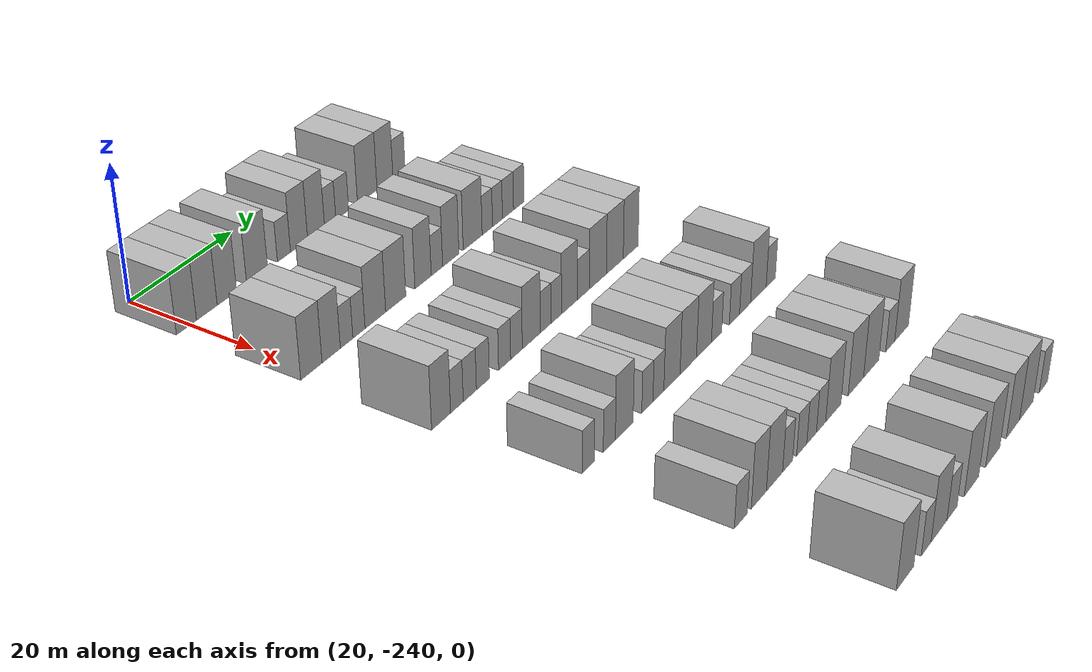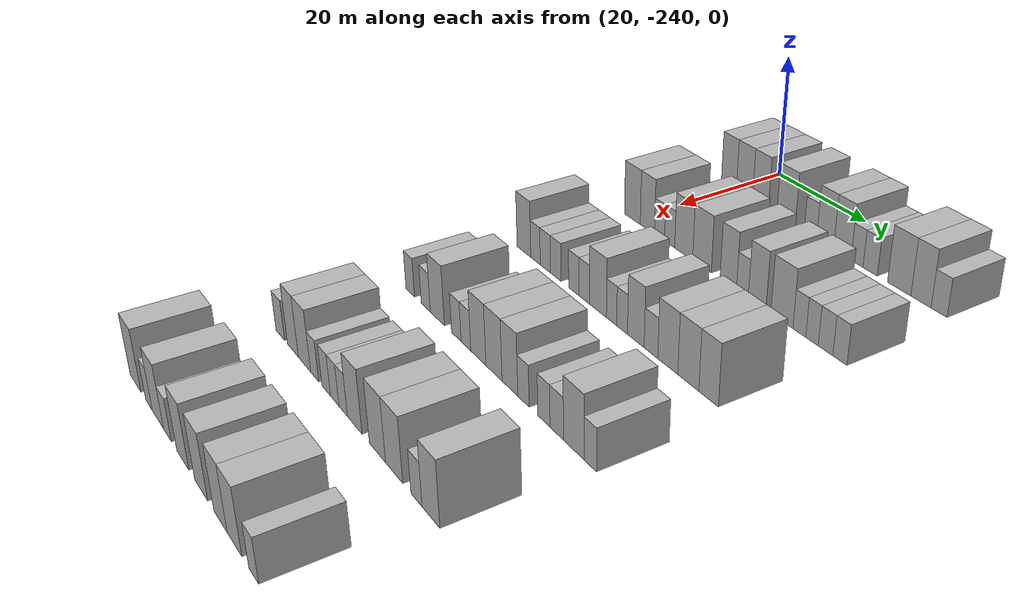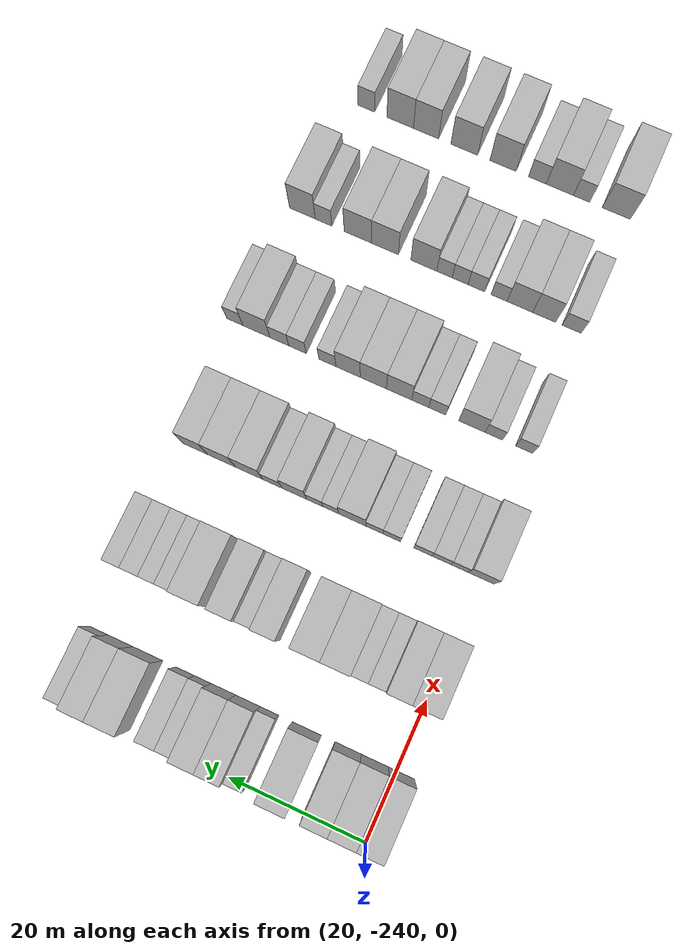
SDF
<sdf version="1.6">
 <world name="default">
  <model name="building_25">
   <static>1</static>
   <pose>25.0000 -240.6920 0 0.000000 0.000000 0.000000</pose>
   <link name="link">
    <pose>0 0 4.50 0 0 0</pose>
    <collision name="collision"><geometry><box><size>10.0000 3.7934 9.0000</size></box></geometry></collision>
    <visual name="visual">
     <cast_shadows>0</cast_shadows>
     <geometry><box><size>10.0000 3.7934 9.0000</size></box></geometry>
     <material>
      <script>
       <uri>model://HANNAS_wall/materials/scripts</uri>
       <uri>model://HANNAS_wall/materials/textures</uri>
       <name>vrc/HANNAS_wall</name>
      </script>
     </material>
    </visual>
   </link>
  </model>
  <model name="building_26">
   <static>1</static>
   <pose>25.0000 -236.7991 0 0.000000 0.000000 0.000000</pose>
   <link name="link">
    <pose>0 0 4.50 0 0 0</pose>
    <collision name="collision"><geometry><box><size>10.0000 3.9925 9.0000</size></box></geometry></collision>
    <visual name="visual">
     <cast_shadows>0</cast_shadows>
     <geometry><box><size>10.0000 3.9925 9.0000</size></box></geometry>
     <material>
      <script>
       <uri>model://HANNAS_wall/materials/scripts</uri>
       <uri>model://HANNAS_wall/materials/textures</uri>
       <name>vrc/HANNAS_wall</name>
      </script>
     </material>
    </visual>
   </link>
  </model>
  <model name="building_27">
   <static>1</static>
   <pose>25.0000 -232.8922 0 0.000000 0.000000 0.000000</pose>
   <link name="link">
    <pose>0 0 4.50 0 0 0</pose>
    <collision name="collision"><geometry><box><size>10.0000 3.8211 9.0000</size></box></geometry></collision>
    <visual name="visual">
     <cast_shadows>0</cast_shadows>
     <geometry><box><size>10.0000 3.8211 9.0000</size></box></geometry>
     <material>
      <script>
       <uri>model://HANNAS_wall/materials/scripts</uri>
       <uri>model://HANNAS_wall/materials/textures</uri>
       <name>vrc/HANNAS_wall</name>
      </script>
     </material>
    </visual>
   </link>
  </model>
  <model name="building_28">
   <static>1</static>
   <pose>25.0000 -226.8412 0 0.000000 0.000000 0.000000</pose>
   <link name="link">
    <pose>0 0 4.50 0 0 0</pose>
    <collision name="collision"><geometry><box><size>10.0000 4.2809 9.0000</size></box></geometry></collision>
    <visual name="visual">
     <cast_shadows>0</cast_shadows>
     <geometry><box><size>10.0000 4.2809 9.0000</size></box></geometry>
     <material>
      <script>
       <uri>model://HANNAS_wall/materials/scripts</uri>
       <uri>model://HANNAS_wall/materials/textures</uri>
       <name>vrc/HANNAS_wall</name>
      </script>
     </material>
    </visual>
   </link>
  </model>
  <model name="building_29">
   <static>1</static>
   <pose>25.0000 -221.3224 0 0.000000 0.000000 0.000000</pose>
   <link name="link">
    <pose>0 0 3.00 0 0 0</pose>
    <collision name="collision"><geometry><box><size>10.0000 2.7567 6.0000</size></box></geometry></collision>
    <visual name="visual">
     <cast_shadows>0</cast_shadows>
     <geometry><box><size>10.0000 2.7567 6.0000</size></box></geometry>
     <material>
      <script>
       <uri>model://HANNAS_wall/materials/scripts</uri>
       <uri>model://HANNAS_wall/materials/textures</uri>
       <name>vrc/HANNAS_wall</name>
      </script>
     </material>
    </visual>
   </link>
  </model>
  <model name="building_30">
   <static>1</static>
   <pose>25.0000 -218.1187 0 0.000000 0.000000 0.000000</pose>
   <link name="link">
    <pose>0 0 4.50 0 0 0</pose>
    <collision name="collision"><geometry><box><size>10.0000 3.6509 9.0000</size></box></geometry></collision>
    <visual name="visual">
     <cast_shadows>0</cast_shadows>
     <geometry><box><size>10.0000 3.6509 9.0000</size></box></geometry>
     <material>
      <script>
       <uri>model://HANNAS_wall/materials/scripts</uri>
       <uri>model://HANNAS_wall/materials/textures</uri>
       <name>vrc/HANNAS_wall</name>
      </script>
     </material>
    </visual>
   </link>
  </model>
  <model name="building_31">
   <static>1</static>
   <pose>25.0000 -214.4540 0 0.000000 0.000000 0.000000</pose>
   <link name="link">
    <pose>0 0 4.50 0 0 0</pose>
    <collision name="collision"><geometry><box><size>10.0000 3.6784 9.0000</size></box></geometry></collision>
    <visual name="visual">
     <cast_shadows>0</cast_shadows>
     <geometry><box><size>10.0000 3.6784 9.0000</size></box></geometry>
     <material>
      <script>
       <uri>model://HANNAS_wall/materials/scripts</uri>
       <uri>model://HANNAS_wall/materials/textures</uri>
       <name>vrc/HANNAS_wall</name>
      </script>
     </material>
    </visual>
   </link>
  </model>
  <model name="building_32">
   <static>1</static>
   <pose>25.0000 -211.3773 0 0.000000 0.000000 0.000000</pose>
   <link name="link">
    <pose>0 0 3.00 0 0 0</pose>
    <collision name="collision"><geometry><box><size>10.0000 2.4749 6.0000</size></box></geometry></collision>
    <visual name="visual">
     <cast_shadows>0</cast_shadows>
     <geometry><box><size>10.0000 2.4749 6.0000</size></box></geometry>
     <material>
      <script>
       <uri>model://HANNAS_wall/materials/scripts</uri>
       <uri>model://HANNAS_wall/materials/textures</uri>
       <name>vrc/HANNAS_wall</name>
      </script>
     </material>
    </visual>
   </link>
  </model>
  <model name="building_33">
   <static>1</static>
   <pose>25.0000 -208.6981 0 0.000000 0.000000 0.000000</pose>
   <link name="link">
    <pose>0 0 3.00 0 0 0</pose>
    <collision name="collision"><geometry><box><size>10.0000 2.8835 6.0000</size></box></geometry></collision>
    <visual name="visual">
     <cast_shadows>0</cast_shadows>
     <geometry><box><size>10.0000 2.8835 6.0000</size></box></geometry>
     <material>
      <script>
       <uri>model://HANNAS_wall/materials/scripts</uri>
       <uri>model://HANNAS_wall/materials/textures</uri>
       <name>vrc/HANNAS_wall</name>
      </script>
     </material>
    </visual>
   </link>
  </model>
  <model name="building_34">
   <static>1</static>
   <pose>25.0000 -203.0169 0 0.000000 0.000000 0.000000</pose>
   <link name="link">
    <pose>0 0 4.50 0 0 0</pose>
    <collision name="collision"><geometry><box><size>10.0000 4.4790 9.0000</size></box></geometry></collision>
    <visual name="visual">
     <cast_shadows>0</cast_shadows>
     <geometry><box><size>10.0000 4.4790 9.0000</size></box></geometry>
     <material>
      <script>
       <uri>model://HANNAS_wall/materials/scripts</uri>
       <uri>model://HANNAS_wall/materials/textures</uri>
       <name>vrc/HANNAS_wall</name>
      </script>
     </material>
    </visual>
   </link>
  </model>
  <model name="building_35">
   <static>1</static>
   <pose>25.0000 -198.8989 0 0.000000 0.000000 0.000000</pose>
   <link name="link">
    <pose>0 0 4.50 0 0 0</pose>
    <collision name="collision"><geometry><box><size>10.0000 3.7570 9.0000</size></box></geometry></collision>
    <visual name="visual">
     <cast_shadows>0</cast_shadows>
     <geometry><box><size>10.0000 3.7570 9.0000</size></box></geometry>
     <material>
      <script>
       <uri>model://HANNAS_wall/materials/scripts</uri>
       <uri>model://HANNAS_wall/materials/textures</uri>
       <name>vrc/HANNAS_wall</name>
      </script>
     </material>
    </visual>
   </link>
  </model>
  <model name="building_36">
   <static>1</static>
   <pose>25.0000 -195.5703 0 0.000000 0.000000 0.000000</pose>
   <link name="link">
    <pose>0 0 3.00 0 0 0</pose>
    <collision name="collision"><geometry><box><size>10.0000 2.9002 6.0000</size></box></geometry></collision>
    <visual name="visual">
     <cast_shadows>0</cast_shadows>
     <geometry><box><size>10.0000 2.9002 6.0000</size></box></geometry>
     <material>
      <script>
       <uri>model://HANNAS_wall/materials/scripts</uri>
       <uri>model://HANNAS_wall/materials/textures</uri>
       <name>vrc/HANNAS_wall</name>
      </script>
     </material>
    </visual>
   </link>
  </model>
  <model name="building_202">
   <static>1</static>
   <pose>44.0000 -240.0923 0 0.000000 0.000000 0.000000</pose>
   <link name="link">
    <pose>0 0 4.50 0 0 0</pose>
    <collision name="collision"><geometry><box><size>10.0000 4.1761 9.0000</size></box></geometry></collision>
    <visual name="visual">
     <cast_shadows>0</cast_shadows>
     <geometry><box><size>10.0000 4.1761 9.0000</size></box></geometry>
     <material>
      <script>
       <uri>model://HANNAS_wall/materials/scripts</uri>
       <uri>model://HANNAS_wall/materials/textures</uri>
       <name>vrc/HANNAS_wall</name>
      </script>
     </material>
    </visual>
   </link>
  </model>
  <model name="building_203">
   <static>1</static>
   <pose>44.0000 -236.1769 0 0.000000 0.000000 0.000000</pose>
   <link name="link">
    <pose>0 0 4.50 0 0 0</pose>
    <collision name="collision"><geometry><box><size>10.0000 3.6547 9.0000</size></box></geometry></collision>
    <visual name="visual">
     <cast_shadows>0</cast_shadows>
     <geometry><box><size>10.0000 3.6547 9.0000</size></box></geometry>
     <material>
      <script>
       <uri>model://HANNAS_wall/materials/scripts</uri>
       <uri>model://HANNAS_wall/materials/textures</uri>
       <name>vrc/HANNAS_wall</name>
      </script>
     </material>
    </visual>
   </link>
  </model>
  <model name="building_204">
   <static>1</static>
   <pose>44.0000 -233.0744 0 0.000000 0.000000 0.000000</pose>
   <link name="link">
    <pose>0 0 3.00 0 0 0</pose>
    <collision name="collision"><geometry><box><size>10.0000 2.5502 6.0000</size></box></geometry></collision>
    <visual name="visual">
     <cast_shadows>0</cast_shadows>
     <geometry><box><size>10.0000 2.5502 6.0000</size></box></geometry>
     <material>
      <script>
       <uri>model://HANNAS_wall/materials/scripts</uri>
       <uri>model://HANNAS_wall/materials/textures</uri>
       <name>vrc/HANNAS_wall</name>
      </script>
     </material>
    </visual>
   </link>
  </model>
  <model name="building_205">
   <static>1</static>
   <pose>44.0000 -230.5454 0 0.000000 0.000000 0.000000</pose>
   <link name="link">
    <pose>0 0 3.00 0 0 0</pose>
    <collision name="collision"><geometry><box><size>10.0000 2.5078 6.0000</size></box></geometry></collision>
    <visual name="visual">
     <cast_shadows>0</cast_shadows>
     <geometry><box><size>10.0000 2.5078 6.0000</size></box></geometry>
     <material>
      <script>
       <uri>model://HANNAS_wall/materials/scripts</uri>
       <uri>model://HANNAS_wall/materials/textures</uri>
       <name>vrc/HANNAS_wall</name>
      </script>
     </material>
    </visual>
   </link>
  </model>
  <model name="building_206">
   <static>1</static>
   <pose>44.0000 -227.1193 0 0.000000 0.000000 0.000000</pose>
   <link name="link">
    <pose>0 0 4.50 0 0 0</pose>
    <collision name="collision"><geometry><box><size>10.0000 4.3445 9.0000</size></box></geometry></collision>
    <visual name="visual">
     <cast_shadows>0</cast_shadows>
     <geometry><box><size>10.0000 4.3445 9.0000</size></box></geometry>
     <material>
      <script>
       <uri>model://HANNAS_wall/materials/scripts</uri>
       <uri>model://HANNAS_wall/materials/textures</uri>
       <name>vrc/HANNAS_wall</name>
      </script>
     </material>
    </visual>
   </link>
  </model>
  <model name="building_207">
   <static>1</static>
   <pose>44.0000 -222.7754 0 0.000000 0.000000 0.000000</pose>
   <link name="link">
    <pose>0 0 4.50 0 0 0</pose>
    <collision name="collision"><geometry><box><size>10.0000 4.3433 9.0000</size></box></geometry></collision>
    <visual name="visual">
     <cast_shadows>0</cast_shadows>
     <geometry><box><size>10.0000 4.3433 9.0000</size></box></geometry>
     <material>
      <script>
       <uri>model://HANNAS_wall/materials/scripts</uri>
       <uri>model://HANNAS_wall/materials/textures</uri>
       <name>vrc/HANNAS_wall</name>
      </script>
     </material>
    </visual>
   </link>
  </model>
  <model name="building_208">
   <static>1</static>
   <pose>44.0000 -216.7900 0 0.000000 0.000000 0.000000</pose>
   <link name="link">
    <pose>0 0 4.50 0 0 0</pose>
    <collision name="collision"><geometry><box><size>10.0000 3.6277 9.0000</size></box></geometry></collision>
    <visual name="visual">
     <cast_shadows>0</cast_shadows>
     <geometry><box><size>10.0000 3.6277 9.0000</size></box></geometry>
     <material>
      <script>
       <uri>model://HANNAS_wall/materials/scripts</uri>
       <uri>model://HANNAS_wall/materials/textures</uri>
       <name>vrc/HANNAS_wall</name>
      </script>
     </material>
    </visual>
   </link>
  </model>
  <model name="building_209">
   <static>1</static>
   <pose>44.0000 -213.6819 0 0.000000 0.000000 0.000000</pose>
   <link name="link">
    <pose>0 0 3.00 0 0 0</pose>
    <collision name="collision"><geometry><box><size>10.0000 2.5885 6.0000</size></box></geometry></collision>
    <visual name="visual">
     <cast_shadows>0</cast_shadows>
     <geometry><box><size>10.0000 2.5885 6.0000</size></box></geometry>
     <material>
      <script>
       <uri>model://HANNAS_wall/materials/scripts</uri>
       <uri>model://HANNAS_wall/materials/textures</uri>
       <name>vrc/HANNAS_wall</name>
      </script>
     </material>
    </visual>
   </link>
  </model>
  <model name="building_210">
   <static>1</static>
   <pose>44.0000 -210.5185 0 0.000000 0.000000 0.000000</pose>
   <link name="link">
    <pose>0 0 4.50 0 0 0</pose>
    <collision name="collision"><geometry><box><size>10.0000 3.7384 9.0000</size></box></geometry></collision>
    <visual name="visual">
     <cast_shadows>0</cast_shadows>
     <geometry><box><size>10.0000 3.7384 9.0000</size></box></geometry>
     <material>
      <script>
       <uri>model://HANNAS_wall/materials/scripts</uri>
       <uri>model://HANNAS_wall/materials/textures</uri>
       <name>vrc/HANNAS_wall</name>
      </script>
     </material>
    </visual>
   </link>
  </model>
  <model name="building_211">
   <static>1</static>
   <pose>44.0000 -205.4026 0 0.000000 0.000000 0.000000</pose>
   <link name="link">
    <pose>0 0 4.50 0 0 0</pose>
    <collision name="collision"><geometry><box><size>10.0000 4.4933 9.0000</size></box></geometry></collision>
    <visual name="visual">
     <cast_shadows>0</cast_shadows>
     <geometry><box><size>10.0000 4.4933 9.0000</size></box></geometry>
     <material>
      <script>
       <uri>model://HANNAS_wall/materials/scripts</uri>
       <uri>model://HANNAS_wall/materials/textures</uri>
       <name>vrc/HANNAS_wall</name>
      </script>
     </material>
    </visual>
   </link>
  </model>
  <model name="building_212">
   <static>1</static>
   <pose>44.0000 -201.9008 0 0.000000 0.000000 0.000000</pose>
   <link name="link">
    <pose>0 0 3.00 0 0 0</pose>
    <collision name="collision"><geometry><box><size>10.0000 2.5104 6.0000</size></box></geometry></collision>
    <visual name="visual">
     <cast_shadows>0</cast_shadows>
     <geometry><box><size>10.0000 2.5104 6.0000</size></box></geometry>
     <material>
      <script>
       <uri>model://HANNAS_wall/materials/scripts</uri>
       <uri>model://HANNAS_wall/materials/textures</uri>
       <name>vrc/HANNAS_wall</name>
      </script>
     </material>
    </visual>
   </link>
  </model>
  <model name="building_213">
   <static>1</static>
   <pose>44.0000 -199.4427 0 0.000000 0.000000 0.000000</pose>
   <link name="link">
    <pose>0 0 3.00 0 0 0</pose>
    <collision name="collision"><geometry><box><size>10.0000 2.4058 6.0000</size></box></geometry></collision>
    <visual name="visual">
     <cast_shadows>0</cast_shadows>
     <geometry><box><size>10.0000 2.4058 6.0000</size></box></geometry>
     <material>
      <script>
       <uri>model://HANNAS_wall/materials/scripts</uri>
       <uri>model://HANNAS_wall/materials/textures</uri>
       <name>vrc/HANNAS_wall</name>
      </script>
     </material>
    </visual>
   </link>
  </model>
  <model name="building_214">
   <static>1</static>
   <pose>44.0000 -196.8656 0 0.000000 0.000000 0.000000</pose>
   <link name="link">
    <pose>0 0 3.00 0 0 0</pose>
    <collision name="collision"><geometry><box><size>10.0000 2.7484 6.0000</size></box></geometry></collision>
    <visual name="visual">
     <cast_shadows>0</cast_shadows>
     <geometry><box><size>10.0000 2.7484 6.0000</size></box></geometry>
     <material>
      <script>
       <uri>model://HANNAS_wall/materials/scripts</uri>
       <uri>model://HANNAS_wall/materials/textures</uri>
       <name>vrc/HANNAS_wall</name>
      </script>
     </material>
    </visual>
   </link>
  </model>
  <model name="building_215">
   <static>1</static>
   <pose>44.0000 -194.1816 0 0.000000 0.000000 0.000000</pose>
   <link name="link">
    <pose>0 0 3.00 0 0 0</pose>
    <collision name="collision"><geometry><box><size>10.0000 2.6196 6.0000</size></box></geometry></collision>
    <visual name="visual">
     <cast_shadows>0</cast_shadows>
     <geometry><box><size>10.0000 2.6196 6.0000</size></box></geometry>
     <material>
      <script>
       <uri>model://HANNAS_wall/materials/scripts</uri>
       <uri>model://HANNAS_wall/materials/textures</uri>
       <name>vrc/HANNAS_wall</name>
      </script>
     </material>
    </visual>
   </link>
  </model>
  <model name="building_370">
   <static>1</static>
   <pose>63.0000 -240.2266 0 0.000000 0.000000 0.000000</pose>
   <link name="link">
    <pose>0 0 4.50 0 0 0</pose>
    <collision name="collision"><geometry><box><size>10.0000 3.8650 9.0000</size></box></geometry></collision>
    <visual name="visual">
     <cast_shadows>0</cast_shadows>
     <geometry><box><size>10.0000 3.8650 9.0000</size></box></geometry>
     <material>
      <script>
       <uri>model://HANNAS_wall/materials/scripts</uri>
       <uri>model://HANNAS_wall/materials/textures</uri>
       <name>vrc/HANNAS_wall</name>
      </script>
     </material>
    </visual>
   </link>
  </model>
  <model name="building_371">
   <static>1</static>
   <pose>63.0000 -236.9826 0 0.000000 0.000000 0.000000</pose>
   <link name="link">
    <pose>0 0 3.00 0 0 0</pose>
    <collision name="collision"><geometry><box><size>10.0000 2.6230 6.0000</size></box></geometry></collision>
    <visual name="visual">
     <cast_shadows>0</cast_shadows>
     <geometry><box><size>10.0000 2.6230 6.0000</size></box></geometry>
     <material>
      <script>
       <uri>model://HANNAS_wall/materials/scripts</uri>
       <uri>model://HANNAS_wall/materials/textures</uri>
       <name>vrc/HANNAS_wall</name>
      </script>
     </material>
    </visual>
   </link>
  </model>
  <model name="building_372">
   <static>1</static>
   <pose>63.0000 -234.2762 0 0.000000 0.000000 0.000000</pose>
   <link name="link">
    <pose>0 0 3.00 0 0 0</pose>
    <collision name="collision"><geometry><box><size>10.0000 2.7898 6.0000</size></box></geometry></collision>
    <visual name="visual">
     <cast_shadows>0</cast_shadows>
     <geometry><box><size>10.0000 2.7898 6.0000</size></box></geometry>
     <material>
      <script>
       <uri>model://HANNAS_wall/materials/scripts</uri>
       <uri>model://HANNAS_wall/materials/textures</uri>
       <name>vrc/HANNAS_wall</name>
      </script>
     </material>
    </visual>
   </link>
  </model>
  <model name="building_373">
   <static>1</static>
   <pose>63.0000 -231.4913 0 0.000000 0.000000 0.000000</pose>
   <link name="link">
    <pose>0 0 3.00 0 0 0</pose>
    <collision name="collision"><geometry><box><size>10.0000 2.7799 6.0000</size></box></geometry></collision>
    <visual name="visual">
     <cast_shadows>0</cast_shadows>
     <geometry><box><size>10.0000 2.7799 6.0000</size></box></geometry>
     <material>
      <script>
       <uri>model://HANNAS_wall/materials/scripts</uri>
       <uri>model://HANNAS_wall/materials/textures</uri>
       <name>vrc/HANNAS_wall</name>
      </script>
     </material>
    </visual>
   </link>
  </model>
  <model name="building_374">
   <static>1</static>
   <pose>63.0000 -226.7721 0 0.000000 0.000000 0.000000</pose>
   <link name="link">
    <pose>0 0 3.00 0 0 0</pose>
    <collision name="collision"><geometry><box><size>10.0000 2.6585 6.0000</size></box></geometry></collision>
    <visual name="visual">
     <cast_shadows>0</cast_shadows>
     <geometry><box><size>10.0000 2.6585 6.0000</size></box></geometry>
     <material>
      <script>
       <uri>model://HANNAS_wall/materials/scripts</uri>
       <uri>model://HANNAS_wall/materials/textures</uri>
       <name>vrc/HANNAS_wall</name>
      </script>
     </material>
    </visual>
   </link>
  </model>
  <model name="building_375">
   <static>1</static>
   <pose>63.0000 -224.1404 0 0.000000 0.000000 0.000000</pose>
   <link name="link">
    <pose>0 0 3.00 0 0 0</pose>
    <collision name="collision"><geometry><box><size>10.0000 2.6050 6.0000</size></box></geometry></collision>
    <visual name="visual">
     <cast_shadows>0</cast_shadows>
     <geometry><box><size>10.0000 2.6050 6.0000</size></box></geometry>
     <material>
      <script>
       <uri>model://HANNAS_wall/materials/scripts</uri>
       <uri>model://HANNAS_wall/materials/textures</uri>
       <name>vrc/HANNAS_wall</name>
      </script>
     </material>
    </visual>
   </link>
  </model>
  <model name="building_376">
   <static>1</static>
   <pose>63.0000 -220.7727 0 0.000000 0.000000 0.000000</pose>
   <link name="link">
    <pose>0 0 4.50 0 0 0</pose>
    <collision name="collision"><geometry><box><size>10.0000 4.1303 9.0000</size></box></geometry></collision>
    <visual name="visual">
     <cast_shadows>0</cast_shadows>
     <geometry><box><size>10.0000 4.1303 9.0000</size></box></geometry>
     <material>
      <script>
       <uri>model://HANNAS_wall/materials/scripts</uri>
       <uri>model://HANNAS_wall/materials/textures</uri>
       <name>vrc/HANNAS_wall</name>
      </script>
     </material>
    </visual>
   </link>
  </model>
  <model name="building_377">
   <static>1</static>
   <pose>63.0000 -217.4929 0 0.000000 0.000000 0.000000</pose>
   <link name="link">
    <pose>0 0 3.00 0 0 0</pose>
    <collision name="collision"><geometry><box><size>10.0000 2.4293 6.0000</size></box></geometry></collision>
    <visual name="visual">
     <cast_shadows>0</cast_shadows>
     <geometry><box><size>10.0000 2.4293 6.0000</size></box></geometry>
     <material>
      <script>
       <uri>model://HANNAS_wall/materials/scripts</uri>
       <uri>model://HANNAS_wall/materials/textures</uri>
       <name>vrc/HANNAS_wall</name>
      </script>
     </material>
    </visual>
   </link>
  </model>
  <model name="building_378">
   <static>1</static>
   <pose>63.0000 -215.0311 0 0.000000 0.000000 0.000000</pose>
   <link name="link">
    <pose>0 0 3.00 0 0 0</pose>
    <collision name="collision"><geometry><box><size>10.0000 2.4943 6.0000</size></box></geometry></collision>
    <visual name="visual">
     <cast_shadows>0</cast_shadows>
     <geometry><box><size>10.0000 2.4943 6.0000</size></box></geometry>
     <material>
      <script>
       <uri>model://HANNAS_wall/materials/scripts</uri>
       <uri>model://HANNAS_wall/materials/textures</uri>
       <name>vrc/HANNAS_wall</name>
      </script>
     </material>
    </visual>
   </link>
  </model>
  <model name="building_379">
   <static>1</static>
   <pose>63.0000 -211.9016 0 0.000000 0.000000 0.000000</pose>
   <link name="link">
    <pose>0 0 4.50 0 0 0</pose>
    <collision name="collision"><geometry><box><size>10.0000 3.7646 9.0000</size></box></geometry></collision>
    <visual name="visual">
     <cast_shadows>0</cast_shadows>
     <geometry><box><size>10.0000 3.7646 9.0000</size></box></geometry>
     <material>
      <script>
       <uri>model://HANNAS_wall/materials/scripts</uri>
       <uri>model://HANNAS_wall/materials/textures</uri>
       <name>vrc/HANNAS_wall</name>
      </script>
     </material>
    </visual>
   </link>
  </model>
  <model name="building_380">
   <static>1</static>
   <pose>63.0000 -208.5231 0 0.000000 0.000000 0.000000</pose>
   <link name="link">
    <pose>0 0 3.00 0 0 0</pose>
    <collision name="collision"><geometry><box><size>10.0000 2.9926 6.0000</size></box></geometry></collision>
    <visual name="visual">
     <cast_shadows>0</cast_shadows>
     <geometry><box><size>10.0000 2.9926 6.0000</size></box></geometry>
     <material>
      <script>
       <uri>model://HANNAS_wall/materials/scripts</uri>
       <uri>model://HANNAS_wall/materials/textures</uri>
       <name>vrc/HANNAS_wall</name>
      </script>
     </material>
    </visual>
   </link>
  </model>
  <model name="building_381">
   <static>1</static>
   <pose>63.0000 -204.9017 0 0.000000 0.000000 0.000000</pose>
   <link name="link">
    <pose>0 0 4.50 0 0 0</pose>
    <collision name="collision"><geometry><box><size>10.0000 4.2501 9.0000</size></box></geometry></collision>
    <visual name="visual">
     <cast_shadows>0</cast_shadows>
     <geometry><box><size>10.0000 4.2501 9.0000</size></box></geometry>
     <material>
      <script>
       <uri>model://HANNAS_wall/materials/scripts</uri>
       <uri>model://HANNAS_wall/materials/textures</uri>
       <name>vrc/HANNAS_wall</name>
      </script>
     </material>
    </visual>
   </link>
  </model>
  <model name="building_382">
   <static>1</static>
   <pose>63.0000 -200.6281 0 0.000000 0.000000 0.000000</pose>
   <link name="link">
    <pose>0 0 4.50 0 0 0</pose>
    <collision name="collision"><geometry><box><size>10.0000 4.2972 9.0000</size></box></geometry></collision>
    <visual name="visual">
     <cast_shadows>0</cast_shadows>
     <geometry><box><size>10.0000 4.2972 9.0000</size></box></geometry>
     <material>
      <script>
       <uri>model://HANNAS_wall/materials/scripts</uri>
       <uri>model://HANNAS_wall/materials/textures</uri>
       <name>vrc/HANNAS_wall</name>
      </script>
     </material>
    </visual>
   </link>
  </model>
  <model name="building_383">
   <static>1</static>
   <pose>63.0000 -196.5551 0 0.000000 0.000000 0.000000</pose>
   <link name="link">
    <pose>0 0 4.50 0 0 0</pose>
    <collision name="collision"><geometry><box><size>10.0000 3.8487 9.0000</size></box></geometry></collision>
    <visual name="visual">
     <cast_shadows>0</cast_shadows>
     <geometry><box><size>10.0000 3.8487 9.0000</size></box></geometry>
     <material>
      <script>
       <uri>model://HANNAS_wall/materials/scripts</uri>
       <uri>model://HANNAS_wall/materials/textures</uri>
       <name>vrc/HANNAS_wall</name>
      </script>
     </material>
    </visual>
   </link>
  </model>
  <model name="building_551">
   <static>1</static>
   <pose>82.0000 -238.6873 0 0.000000 0.000000 0.000000</pose>
   <link name="link">
    <pose>0 0 3.00 0 0 0</pose>
    <collision name="collision"><geometry><box><size>10.0000 2.6082 6.0000</size></box></geometry></collision>
    <visual name="visual">
     <cast_shadows>0</cast_shadows>
     <geometry><box><size>10.0000 2.6082 6.0000</size></box></geometry>
     <material>
      <script>
       <uri>model://HANNAS_wall/materials/scripts</uri>
       <uri>model://HANNAS_wall/materials/textures</uri>
       <name>vrc/HANNAS_wall</name>
      </script>
     </material>
    </visual>
   </link>
  </model>
  <model name="building_552">
   <static>1</static>
   <pose>82.0000 -234.0371 0 0.000000 0.000000 0.000000</pose>
   <link name="link">
    <pose>0 0 3.00 0 0 0</pose>
    <collision name="collision"><geometry><box><size>10.0000 2.6921 6.0000</size></box></geometry></collision>
    <visual name="visual">
     <cast_shadows>0</cast_shadows>
     <geometry><box><size>10.0000 2.6921 6.0000</size></box></geometry>
     <material>
      <script>
       <uri>model://HANNAS_wall/materials/scripts</uri>
       <uri>model://HANNAS_wall/materials/textures</uri>
       <name>vrc/HANNAS_wall</name>
      </script>
     </material>
    </visual>
   </link>
  </model>
  <model name="building_553">
   <static>1</static>
   <pose>82.0000 -230.6638 0 0.000000 0.000000 0.000000</pose>
   <link name="link">
    <pose>0 0 4.50 0 0 0</pose>
    <collision name="collision"><geometry><box><size>10.0000 4.0544 9.0000</size></box></geometry></collision>
    <visual name="visual">
     <cast_shadows>0</cast_shadows>
     <geometry><box><size>10.0000 4.0544 9.0000</size></box></geometry>
     <material>
      <script>
       <uri>model://HANNAS_wall/materials/scripts</uri>
       <uri>model://HANNAS_wall/materials/textures</uri>
       <name>vrc/HANNAS_wall</name>
      </script>
     </material>
    </visual>
   </link>
  </model>
  <model name="building_554">
   <static>1</static>
   <pose>82.0000 -225.3230 0 0.000000 0.000000 0.000000</pose>
   <link name="link">
    <pose>0 0 3.00 0 0 0</pose>
    <collision name="collision"><geometry><box><size>10.0000 2.6272 6.0000</size></box></geometry></collision>
    <visual name="visual">
     <cast_shadows>0</cast_shadows>
     <geometry><box><size>10.0000 2.6272 6.0000</size></box></geometry>
     <material>
      <script>
       <uri>model://HANNAS_wall/materials/scripts</uri>
       <uri>model://HANNAS_wall/materials/textures</uri>
       <name>vrc/HANNAS_wall</name>
      </script>
     </material>
    </visual>
   </link>
  </model>
  <model name="building_555">
   <static>1</static>
   <pose>82.0000 -222.7010 0 0.000000 0.000000 0.000000</pose>
   <link name="link">
    <pose>0 0 3.00 0 0 0</pose>
    <collision name="collision"><geometry><box><size>10.0000 2.6169 6.0000</size></box></geometry></collision>
    <visual name="visual">
     <cast_shadows>0</cast_shadows>
     <geometry><box><size>10.0000 2.6169 6.0000</size></box></geometry>
     <material>
      <script>
       <uri>model://HANNAS_wall/materials/scripts</uri>
       <uri>model://HANNAS_wall/materials/textures</uri>
       <name>vrc/HANNAS_wall</name>
      </script>
     </material>
    </visual>
   </link>
  </model>
  <model name="building_556">
   <static>1</static>
   <pose>82.0000 -219.4186 0 0.000000 0.000000 0.000000</pose>
   <link name="link">
    <pose>0 0 4.50 0 0 0</pose>
    <collision name="collision"><geometry><box><size>10.0000 3.9479 9.0000</size></box></geometry></collision>
    <visual name="visual">
     <cast_shadows>0</cast_shadows>
     <geometry><box><size>10.0000 3.9479 9.0000</size></box></geometry>
     <material>
      <script>
       <uri>model://HANNAS_wall/materials/scripts</uri>
       <uri>model://HANNAS_wall/materials/textures</uri>
       <name>vrc/HANNAS_wall</name>
      </script>
     </material>
    </visual>
   </link>
  </model>
  <model name="building_557">
   <static>1</static>
   <pose>82.0000 -215.4010 0 0.000000 0.000000 0.000000</pose>
   <link name="link">
    <pose>0 0 4.50 0 0 0</pose>
    <collision name="collision"><geometry><box><size>10.0000 4.0873 9.0000</size></box></geometry></collision>
    <visual name="visual">
     <cast_shadows>0</cast_shadows>
     <geometry><box><size>10.0000 4.0873 9.0000</size></box></geometry>
     <material>
      <script>
       <uri>model://HANNAS_wall/materials/scripts</uri>
       <uri>model://HANNAS_wall/materials/textures</uri>
       <name>vrc/HANNAS_wall</name>
      </script>
     </material>
    </visual>
   </link>
  </model>
  <model name="building_558">
   <static>1</static>
   <pose>82.0000 -211.4468 0 0.000000 0.000000 0.000000</pose>
   <link name="link">
    <pose>0 0 4.50 0 0 0</pose>
    <collision name="collision"><geometry><box><size>10.0000 3.8211 9.0000</size></box></geometry></collision>
    <visual name="visual">
     <cast_shadows>0</cast_shadows>
     <geometry><box><size>10.0000 3.8211 9.0000</size></box></geometry>
     <material>
      <script>
       <uri>model://HANNAS_wall/materials/scripts</uri>
       <uri>model://HANNAS_wall/materials/textures</uri>
       <name>vrc/HANNAS_wall</name>
      </script>
     </material>
    </visual>
   </link>
  </model>
  <model name="building_559">
   <static>1</static>
   <pose>82.0000 -208.2003 0 0.000000 0.000000 0.000000</pose>
   <link name="link">
    <pose>0 0 3.00 0 0 0</pose>
    <collision name="collision"><geometry><box><size>10.0000 2.6718 6.0000</size></box></geometry></collision>
    <visual name="visual">
     <cast_shadows>0</cast_shadows>
     <geometry><box><size>10.0000 2.6718 6.0000</size></box></geometry>
     <material>
      <script>
       <uri>model://HANNAS_wall/materials/scripts</uri>
       <uri>model://HANNAS_wall/materials/textures</uri>
       <name>vrc/HANNAS_wall</name>
      </script>
     </material>
    </visual>
   </link>
  </model>
  <model name="building_560">
   <static>1</static>
   <pose>82.0000 -203.4917 0 0.000000 0.000000 0.000000</pose>
   <link name="link">
    <pose>0 0 3.00 0 0 0</pose>
    <collision name="collision"><geometry><box><size>10.0000 2.7453 6.0000</size></box></geometry></collision>
    <visual name="visual">
     <cast_shadows>0</cast_shadows>
     <geometry><box><size>10.0000 2.7453 6.0000</size></box></geometry>
     <material>
      <script>
       <uri>model://HANNAS_wall/materials/scripts</uri>
       <uri>model://HANNAS_wall/materials/textures</uri>
       <name>vrc/HANNAS_wall</name>
      </script>
     </material>
    </visual>
   </link>
  </model>
  <model name="building_561">
   <static>1</static>
   <pose>82.0000 -200.6298 0 0.000000 0.000000 0.000000</pose>
   <link name="link">
    <pose>0 0 3.00 0 0 0</pose>
    <collision name="collision"><geometry><box><size>10.0000 2.9786 6.0000</size></box></geometry></collision>
    <visual name="visual">
     <cast_shadows>0</cast_shadows>
     <geometry><box><size>10.0000 2.9786 6.0000</size></box></geometry>
     <material>
      <script>
       <uri>model://HANNAS_wall/materials/scripts</uri>
       <uri>model://HANNAS_wall/materials/textures</uri>
       <name>vrc/HANNAS_wall</name>
      </script>
     </material>
    </visual>
   </link>
  </model>
  <model name="building_562">
   <static>1</static>
   <pose>82.0000 -196.9849 0 0.000000 0.000000 0.000000</pose>
   <link name="link">
    <pose>0 0 4.50 0 0 0</pose>
    <collision name="collision"><geometry><box><size>10.0000 4.3113 9.0000</size></box></geometry></collision>
    <visual name="visual">
     <cast_shadows>0</cast_shadows>
     <geometry><box><size>10.0000 4.3113 9.0000</size></box></geometry>
     <material>
      <script>
       <uri>model://HANNAS_wall/materials/scripts</uri>
       <uri>model://HANNAS_wall/materials/textures</uri>
       <name>vrc/HANNAS_wall</name>
      </script>
     </material>
    </visual>
   </link>
  </model>
  <model name="building_563">
   <static>1</static>
   <pose>82.0000 -193.5374 0 0.000000 0.000000 0.000000</pose>
   <link name="link">
    <pose>0 0 3.00 0 0 0</pose>
    <collision name="collision"><geometry><box><size>10.0000 2.5836 6.0000</size></box></geometry></collision>
    <visual name="visual">
     <cast_shadows>0</cast_shadows>
     <geometry><box><size>10.0000 2.5836 6.0000</size></box></geometry>
     <material>
      <script>
       <uri>model://HANNAS_wall/materials/scripts</uri>
       <uri>model://HANNAS_wall/materials/textures</uri>
       <name>vrc/HANNAS_wall</name>
      </script>
     </material>
    </visual>
   </link>
  </model>
  <model name="building_722">
   <static>1</static>
   <pose>101.0000 -238.1081 0 0.000000 0.000000 0.000000</pose>
   <link name="link">
    <pose>0 0 3.00 0 0 0</pose>
    <collision name="collision"><geometry><box><size>10.0000 2.9621 6.0000</size></box></geometry></collision>
    <visual name="visual">
     <cast_shadows>0</cast_shadows>
     <geometry><box><size>10.0000 2.9621 6.0000</size></box></geometry>
     <material>
      <script>
       <uri>model://HANNAS_wall/materials/scripts</uri>
       <uri>model://HANNAS_wall/materials/textures</uri>
       <name>vrc/HANNAS_wall</name>
      </script>
     </material>
    </visual>
   </link>
  </model>
  <model name="building_723">
   <static>1</static>
   <pose>101.0000 -233.8179 0 0.000000 0.000000 0.000000</pose>
   <link name="link">
    <pose>0 0 4.50 0 0 0</pose>
    <collision name="collision"><geometry><box><size>10.0000 3.6183 9.0000</size></box></geometry></collision>
    <visual name="visual">
     <cast_shadows>0</cast_shadows>
     <geometry><box><size>10.0000 3.6183 9.0000</size></box></geometry>
     <material>
      <script>
       <uri>model://HANNAS_wall/materials/scripts</uri>
       <uri>model://HANNAS_wall/materials/textures</uri>
       <name>vrc/HANNAS_wall</name>
      </script>
     </material>
    </visual>
   </link>
  </model>
  <model name="building_724">
   <static>1</static>
   <pose>101.0000 -230.0223 0 0.000000 0.000000 0.000000</pose>
   <link name="link">
    <pose>0 0 4.50 0 0 0</pose>
    <collision name="collision"><geometry><box><size>10.0000 3.9728 9.0000</size></box></geometry></collision>
    <visual name="visual">
     <cast_shadows>0</cast_shadows>
     <geometry><box><size>10.0000 3.9728 9.0000</size></box></geometry>
     <material>
      <script>
       <uri>model://HANNAS_wall/materials/scripts</uri>
       <uri>model://HANNAS_wall/materials/textures</uri>
       <name>vrc/HANNAS_wall</name>
      </script>
     </material>
    </visual>
   </link>
  </model>
  <model name="building_725">
   <static>1</static>
   <pose>101.0000 -226.7723 0 0.000000 0.000000 0.000000</pose>
   <link name="link">
    <pose>0 0 3.00 0 0 0</pose>
    <collision name="collision"><geometry><box><size>10.0000 2.5273 6.0000</size></box></geometry></collision>
    <visual name="visual">
     <cast_shadows>0</cast_shadows>
     <geometry><box><size>10.0000 2.5273 6.0000</size></box></geometry>
     <material>
      <script>
       <uri>model://HANNAS_wall/materials/scripts</uri>
       <uri>model://HANNAS_wall/materials/textures</uri>
       <name>vrc/HANNAS_wall</name>
      </script>
     </material>
    </visual>
   </link>
  </model>
  <model name="building_726">
   <static>1</static>
   <pose>101.0000 -223.1971 0 0.000000 0.000000 0.000000</pose>
   <link name="link">
    <pose>0 0 3.00 0 0 0</pose>
    <collision name="collision"><geometry><box><size>10.0000 2.6230 6.0000</size></box></geometry></collision>
    <visual name="visual">
     <cast_shadows>0</cast_shadows>
     <geometry><box><size>10.0000 2.6230 6.0000</size></box></geometry>
     <material>
      <script>
       <uri>model://HANNAS_wall/materials/scripts</uri>
       <uri>model://HANNAS_wall/materials/textures</uri>
       <name>vrc/HANNAS_wall</name>
      </script>
     </material>
    </visual>
   </link>
  </model>
  <model name="building_727">
   <static>1</static>
   <pose>101.0000 -220.6356 0 0.000000 0.000000 0.000000</pose>
   <link name="link">
    <pose>0 0 3.00 0 0 0</pose>
    <collision name="collision"><geometry><box><size>10.0000 2.5001 6.0000</size></box></geometry></collision>
    <visual name="visual">
     <cast_shadows>0</cast_shadows>
     <geometry><box><size>10.0000 2.5001 6.0000</size></box></geometry>
     <material>
      <script>
       <uri>model://HANNAS_wall/materials/scripts</uri>
       <uri>model://HANNAS_wall/materials/textures</uri>
       <name>vrc/HANNAS_wall</name>
      </script>
     </material>
    </visual>
   </link>
  </model>
  <model name="building_728">
   <static>1</static>
   <pose>101.0000 -218.1587 0 0.000000 0.000000 0.000000</pose>
   <link name="link">
    <pose>0 0 3.00 0 0 0</pose>
    <collision name="collision"><geometry><box><size>10.0000 2.4538 6.0000</size></box></geometry></collision>
    <visual name="visual">
     <cast_shadows>0</cast_shadows>
     <geometry><box><size>10.0000 2.4538 6.0000</size></box></geometry>
     <material>
      <script>
       <uri>model://HANNAS_wall/materials/scripts</uri>
       <uri>model://HANNAS_wall/materials/textures</uri>
       <name>vrc/HANNAS_wall</name>
      </script>
     </material>
    </visual>
   </link>
  </model>
  <model name="building_729">
   <static>1</static>
   <pose>101.0000 -214.8772 0 0.000000 0.000000 0.000000</pose>
   <link name="link">
    <pose>0 0 4.50 0 0 0</pose>
    <collision name="collision"><geometry><box><size>10.0000 4.1092 9.0000</size></box></geometry></collision>
    <visual name="visual">
     <cast_shadows>0</cast_shadows>
     <geometry><box><size>10.0000 4.1092 9.0000</size></box></geometry>
     <material>
      <script>
       <uri>model://HANNAS_wall/materials/scripts</uri>
       <uri>model://HANNAS_wall/materials/textures</uri>
       <name>vrc/HANNAS_wall</name>
      </script>
     </material>
    </visual>
   </link>
  </model>
  <model name="building_730">
   <static>1</static>
   <pose>101.0000 -208.6724 0 0.000000 0.000000 0.000000</pose>
   <link name="link">
    <pose>0 0 4.50 0 0 0</pose>
    <collision name="collision"><geometry><box><size>10.0000 4.3004 9.0000</size></box></geometry></collision>
    <visual name="visual">
     <cast_shadows>0</cast_shadows>
     <geometry><box><size>10.0000 4.3004 9.0000</size></box></geometry>
     <material>
      <script>
       <uri>model://HANNAS_wall/materials/scripts</uri>
       <uri>model://HANNAS_wall/materials/textures</uri>
       <name>vrc/HANNAS_wall</name>
      </script>
     </material>
    </visual>
   </link>
  </model>
  <model name="building_731">
   <static>1</static>
   <pose>101.0000 -204.3283 0 0.000000 0.000000 0.000000</pose>
   <link name="link">
    <pose>0 0 4.50 0 0 0</pose>
    <collision name="collision"><geometry><box><size>10.0000 4.3877 9.0000</size></box></geometry></collision>
    <visual name="visual">
     <cast_shadows>0</cast_shadows>
     <geometry><box><size>10.0000 4.3877 9.0000</size></box></geometry>
     <material>
      <script>
       <uri>model://HANNAS_wall/materials/scripts</uri>
       <uri>model://HANNAS_wall/materials/textures</uri>
       <name>vrc/HANNAS_wall</name>
      </script>
     </material>
    </visual>
   </link>
  </model>
  <model name="building_732">
   <static>1</static>
   <pose>101.0000 -198.7968 0 0.000000 0.000000 0.000000</pose>
   <link name="link">
    <pose>0 0 3.00 0 0 0</pose>
    <collision name="collision"><geometry><box><size>10.0000 2.6753 6.0000</size></box></geometry></collision>
    <visual name="visual">
     <cast_shadows>0</cast_shadows>
     <geometry><box><size>10.0000 2.6753 6.0000</size></box></geometry>
     <material>
      <script>
       <uri>model://HANNAS_wall/materials/scripts</uri>
       <uri>model://HANNAS_wall/materials/textures</uri>
       <name>vrc/HANNAS_wall</name>
      </script>
     </material>
    </visual>
   </link>
  </model>
  <model name="building_733">
   <static>1</static>
   <pose>101.0000 -195.3884 0 0.000000 0.000000 0.000000</pose>
   <link name="link">
    <pose>0 0 4.50 0 0 0</pose>
    <collision name="collision"><geometry><box><size>10.0000 4.1413 9.0000</size></box></geometry></collision>
    <visual name="visual">
     <cast_shadows>0</cast_shadows>
     <geometry><box><size>10.0000 4.1413 9.0000</size></box></geometry>
     <material>
      <script>
       <uri>model://HANNAS_wall/materials/scripts</uri>
       <uri>model://HANNAS_wall/materials/textures</uri>
       <name>vrc/HANNAS_wall</name>
      </script>
     </material>
    </visual>
   </link>
  </model>
  <model name="building_898">
   <static>1</static>
   <pose>120.0000 -237.3985 0 0.000000 0.000000 0.000000</pose>
   <link name="link">
    <pose>0 0 4.50 0 0 0</pose>
    <collision name="collision"><geometry><box><size>10.0000 4.4330 9.0000</size></box></geometry></collision>
    <visual name="visual">
     <cast_shadows>0</cast_shadows>
     <geometry><box><size>10.0000 4.4330 9.0000</size></box></geometry>
     <material>
      <script>
       <uri>model://HANNAS_wall/materials/scripts</uri>
       <uri>model://HANNAS_wall/materials/textures</uri>
       <name>vrc/HANNAS_wall</name>
      </script>
     </material>
    </visual>
   </link>
  </model>
  <model name="building_899">
   <static>1</static>
   <pose>120.0000 -231.8883 0 0.000000 0.000000 0.000000</pose>
   <link name="link">
    <pose>0 0 3.00 0 0 0</pose>
    <collision name="collision"><geometry><box><size>10.0000 2.5875 6.0000</size></box></geometry></collision>
    <visual name="visual">
     <cast_shadows>0</cast_shadows>
     <geometry><box><size>10.0000 2.5875 6.0000</size></box></geometry>
     <material>
      <script>
       <uri>model://HANNAS_wall/materials/scripts</uri>
       <uri>model://HANNAS_wall/materials/textures</uri>
       <name>vrc/HANNAS_wall</name>
      </script>
     </material>
    </visual>
   </link>
  </model>
  <model name="building_900">
   <static>1</static>
   <pose>120.0000 -228.4321 0 0.000000 0.000000 0.000000</pose>
   <link name="link">
    <pose>0 0 4.50 0 0 0</pose>
    <collision name="collision"><geometry><box><size>10.0000 4.3249 9.0000</size></box></geometry></collision>
    <visual name="visual">
     <cast_shadows>0</cast_shadows>
     <geometry><box><size>10.0000 4.3249 9.0000</size></box></geometry>
     <material>
      <script>
       <uri>model://HANNAS_wall/materials/scripts</uri>
       <uri>model://HANNAS_wall/materials/textures</uri>
       <name>vrc/HANNAS_wall</name>
      </script>
     </material>
    </visual>
   </link>
  </model>
  <model name="building_901">
   <static>1</static>
   <pose>120.0000 -224.8447 0 0.000000 0.000000 0.000000</pose>
   <link name="link">
    <pose>0 0 3.00 0 0 0</pose>
    <collision name="collision"><geometry><box><size>10.0000 2.8497 6.0000</size></box></geometry></collision>
    <visual name="visual">
     <cast_shadows>0</cast_shadows>
     <geometry><box><size>10.0000 2.8497 6.0000</size></box></geometry>
     <material>
      <script>
       <uri>model://HANNAS_wall/materials/scripts</uri>
       <uri>model://HANNAS_wall/materials/textures</uri>
       <name>vrc/HANNAS_wall</name>
      </script>
     </material>
    </visual>
   </link>
  </model>
  <model name="building_902">
   <static>1</static>
   <pose>120.0000 -219.3127 0 0.000000 0.000000 0.000000</pose>
   <link name="link">
    <pose>0 0 4.50 0 0 0</pose>
    <collision name="collision"><geometry><box><size>10.0000 4.2144 9.0000</size></box></geometry></collision>
    <visual name="visual">
     <cast_shadows>0</cast_shadows>
     <geometry><box><size>10.0000 4.2144 9.0000</size></box></geometry>
     <material>
      <script>
       <uri>model://HANNAS_wall/materials/scripts</uri>
       <uri>model://HANNAS_wall/materials/textures</uri>
       <name>vrc/HANNAS_wall</name>
      </script>
     </material>
    </visual>
   </link>
  </model>
  <model name="building_903">
   <static>1</static>
   <pose>120.0000 -213.0553 0 0.000000 0.000000 0.000000</pose>
   <link name="link">
    <pose>0 0 4.50 0 0 0</pose>
    <collision name="collision"><geometry><box><size>10.0000 4.3004 9.0000</size></box></geometry></collision>
    <visual name="visual">
     <cast_shadows>0</cast_shadows>
     <geometry><box><size>10.0000 4.3004 9.0000</size></box></geometry>
     <material>
      <script>
       <uri>model://HANNAS_wall/materials/scripts</uri>
       <uri>model://HANNAS_wall/materials/textures</uri>
       <name>vrc/HANNAS_wall</name>
      </script>
     </material>
    </visual>
   </link>
  </model>
  <model name="building_904">
   <static>1</static>
   <pose>120.0000 -206.8556 0 0.000000 0.000000 0.000000</pose>
   <link name="link">
    <pose>0 0 4.50 0 0 0</pose>
    <collision name="collision"><geometry><box><size>10.0000 4.0989 9.0000</size></box></geometry></collision>
    <visual name="visual">
     <cast_shadows>0</cast_shadows>
     <geometry><box><size>10.0000 4.0989 9.0000</size></box></geometry>
     <material>
      <script>
       <uri>model://HANNAS_wall/materials/scripts</uri>
       <uri>model://HANNAS_wall/materials/textures</uri>
       <name>vrc/HANNAS_wall</name>
      </script>
     </material>
    </visual>
   </link>
  </model>
  <model name="building_905">
   <static>1</static>
   <pose>120.0000 -202.6389 0 0.000000 0.000000 0.000000</pose>
   <link name="link">
    <pose>0 0 4.50 0 0 0</pose>
    <collision name="collision"><geometry><box><size>10.0000 4.3346 9.0000</size></box></geometry></collision>
    <visual name="visual">
     <cast_shadows>0</cast_shadows>
     <geometry><box><size>10.0000 4.3346 9.0000</size></box></geometry>
     <material>
      <script>
       <uri>model://HANNAS_wall/materials/scripts</uri>
       <uri>model://HANNAS_wall/materials/textures</uri>
       <name>vrc/HANNAS_wall</name>
      </script>
     </material>
    </visual>
   </link>
  </model>
  <model name="building_906">
   <static>1</static>
   <pose>120.0000 -197.1005 0 0.000000 0.000000 0.000000</pose>
   <link name="link">
    <pose>0 0 3.00 0 0 0</pose>
    <collision name="collision"><geometry><box><size>10.0000 2.7422 6.0000</size></box></geometry></collision>
    <visual name="visual">
     <cast_shadows>0</cast_shadows>
     <geometry><box><size>10.0000 2.7422 6.0000</size></box></geometry>
     <material>
      <script>
       <uri>model://HANNAS_wall/materials/scripts</uri>
       <uri>model://HANNAS_wall/materials/textures</uri>
       <name>vrc/HANNAS_wall</name>
      </script>
     </material>
    </visual>
   </link>
  </model>
 </world>
</sdf>
